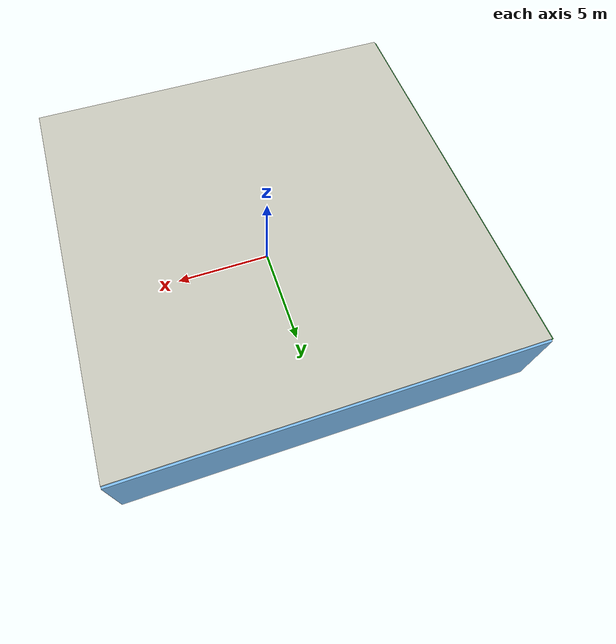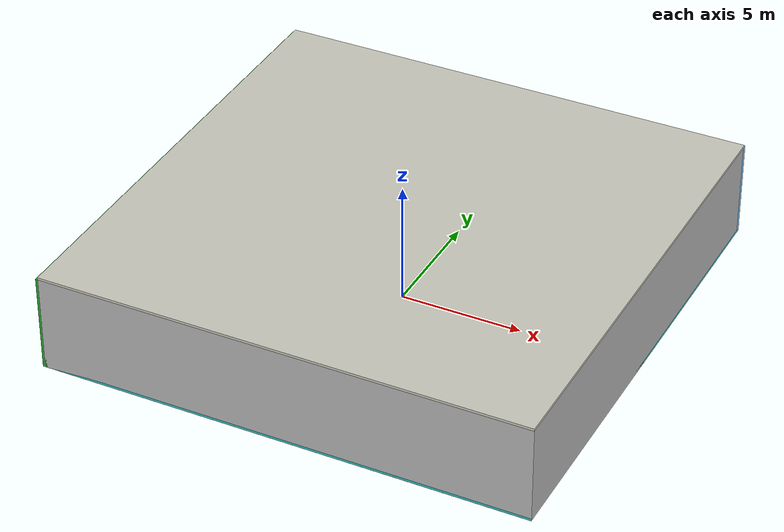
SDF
<sdf version="1.4">
 <world name="default">
  <physics type="ode">
   <max_step_size>0.001</max_step_size>
   <real_time_factor>1</real_time_factor>
   <real_time_update_rate>1000</real_time_update_rate>
   <gravity>0 0 -9.8</gravity>
  </physics>
  <scene><ambient>0.4 0.4 0.4 1</ambient><background>0.7 0.7 0.7 1</background><shadows>1</shadows></scene>
  <model name="Surrounding">
   <static>1</static>
   <link name="Ceiling">
    <collision name="Ceiling_Collision"><geometry><box><size>20 20 0.1</size></box></geometry></collision>
    <visual name="Ceiling_Visual">
     <geometry><box><size>20 20 0.1</size></box></geometry>
     <material>
      <script><uri>file://media/materials/scripts/gazebo.material</uri><name>Gazebo/PaintedWall</name></script>
     </material>
    </visual>
    <pose>0 0 4.05 0 0 0</pose>
   </link>
   <link name="Wall_South">
    <collision name="Wall_South_Collision">
     <geometry><box><size>20 0 4</size></box></geometry>
     <pose>0 0 2 0 -0 0</pose>
    </collision>
    <visual name="Wall_South_Visual">
     <pose>0 0 2 0 -0 0</pose>
     <geometry><box><size>20 0 4</size></box></geometry>
     <material>
      <script><uri>file://media/materials/scripts/gazebo.material</uri><name>Gazebo/CloudySky</name></script>
     </material>
    </visual>
    <velocity_decay><linear>0</linear><angular>0</angular></velocity_decay>
    <pose>0 -10 0 0 -0 0</pose>
   </link>
   <link name="Wall_East">
    <collision name="Wall_21_Collision">
     <geometry><box><size>20 0 4</size></box></geometry>
     <pose>0 0 2 0 -0 0</pose>
    </collision>
    <visual name="Wall_21_Visual">
     <pose>0 0 2 0 -0 0</pose>
     <geometry><box><size>20 0 4</size></box></geometry>
     <material>
      <script><uri>file://media/materials/scripts/gazebo.material</uri><name>Gazebo/LightOff</name></script>
     </material>
    </visual>
    <velocity_decay><linear>0</linear><angular>0</angular></velocity_decay>
    <pose>10 0 0 0 -0 1.5708</pose>
   </link>
   <link name="Wall_North">
    <collision name="Wall_22_Collision">
     <geometry><box><size>20 0.2 4</size></box></geometry>
     <pose>0 0 2 0 -0 0</pose>
    </collision>
    <visual name="Wall_22_Visual">
     <pose>0 0 2 0 -0 0</pose>
     <geometry><box><size>20 0.2 4</size></box></geometry>
     <material>
      <script><uri>file://media/materials/scripts/gazebo.material</uri><name>Gazebo/SkyBlue</name></script>
     </material>
    </visual>
    <velocity_decay><linear>0</linear><angular>0</angular></velocity_decay>
    <pose>0 10 0 0 -0 0</pose>
   </link>
   <link name="Wall_West">
    <collision name="Wall_23_Collision">
     <geometry><box><size>20 0.2 4</size></box></geometry>
     <pose>0 0 2 0 -0 0</pose>
    </collision>
    <visual name="Wall_23_Visual">
     <pose>0 0 2 0 -0 0</pose>
     <geometry><box><size>20 0.2 4</size></box></geometry>
     <material>
      <script><uri>file://media/materials/scripts/gazebo.material</uri><name>Gazebo/Green</name></script>
     </material>
    </visual>
    <velocity_decay><linear>0</linear><angular>0</angular></velocity_decay>
    <pose>-10 0 0 0 0 -1.5708</pose>
   </link>
   <link name="Ground_link">
    <collision name="collision">
     <pose>0 0 .05 0 -0 0</pose>
     <geometry><box><size>20 20 0.1</size></box></geometry>
    </collision>
    <visual name="visual">
     <pose>0 0 .05 0 -0 0</pose>
     <geometry><box><size>20 20 0.1</size></box></geometry>
     <material>
      <script><uri>file://media/materials/scripts/gazebo.material</uri><name>Gazebo/Turquoise</name></script>
     </material>
    </visual>
   </link>
   <static>1</static>
  </model>
  <spherical_coordinates>
   <surface_model>EARTH_WGS84</surface_model>
   <latitude_deg>0</latitude_deg>
   <longitude_deg>0</longitude_deg>
   <elevation>0</elevation>
   <heading_deg>0</heading_deg>
  </spherical_coordinates>
  <light name="lightball_0" type="diffuse">
   <diffuse>0.8 0.8 0.8 1</diffuse>
   <specular>0.2 0.2 0.2 1</specular>
   <attenuation>
    <range>100</range>
    <constant>0.7</constant>
    <linear>0.01</linear>
    <quadratic>0.001</quadratic>
   </attenuation>
   <direction>-0.5 0.1 -0.9</direction>
   <pose>-8.83407079036 -7.58582655302 1.1931690919 0 0 0</pose>
  </light>
  <light name="lightball_1" type="diffuse">
   <diffuse>0.8 0.8 0.8 1</diffuse>
   <specular>0.2 0.2 0.2 1</specular>
   <attenuation>
    <range>100</range>
    <constant>0.7</constant>
    <linear>0.01</linear>
    <quadratic>0.001</quadratic>
   </attenuation>
   <direction>-0.5 0.1 -0.9</direction>
   <pose>9.05900714564 4.03106615002 1.46302141092 0 0 0</pose>
  </light>
  <light name="lightball_2" type="diffuse">
   <diffuse>0.8 0.8 0.8 1</diffuse>
   <specular>0.2 0.2 0.2 1</specular>
   <attenuation>
    <range>100</range>
    <constant>0.7</constant>
    <linear>0.01</linear>
    <quadratic>0.001</quadratic>
   </attenuation>
   <direction>-0.5 0.1 -0.9</direction>
   <pose>8.02565508388 8.8834182991 2.79652035931 0 0 0</pose>
  </light>
  <light name="lightball_3" type="diffuse">
   <diffuse>0.8 0.8 0.8 1</diffuse>
   <specular>0.2 0.2 0.2 1</specular>
   <attenuation>
    <range>100</range>
    <constant>0.7</constant>
    <linear>0.01</linear>
    <quadratic>0.001</quadratic>
   </attenuation>
   <direction>-0.5 0.1 -0.9</direction>
   <pose>0.363282563325 -3.67245171329 2.86369148444 0 0 0</pose>
  </light>
  <light name="lightball_4" type="diffuse">
   <diffuse>0.8 0.8 0.8 1</diffuse>
   <specular>0.2 0.2 0.2 1</specular>
   <attenuation>
    <range>100</range>
    <constant>0.7</constant>
    <linear>0.01</linear>
    <quadratic>0.001</quadratic>
   </attenuation>
   <direction>-0.5 0.1 -0.9</direction>
   <pose>0.838724330853 2.46325874211 1.12248610142 0 0 0</pose>
  </light>
  <light name="lightball_5" type="diffuse">
   <diffuse>0.8 0.8 0.8 1</diffuse>
   <specular>0.2 0.2 0.2 1</specular>
   <attenuation>
    <range>100</range>
    <constant>0.7</constant>
    <linear>0.01</linear>
    <quadratic>0.001</quadratic>
   </attenuation>
   <direction>-0.5 0.1 -0.9</direction>
   <pose>6.30561857859 8.36365268929 0.962724698875 0 0 0</pose>
  </light>
  <light name="lightball_6" type="diffuse">
   <diffuse>0.8 0.8 0.8 1</diffuse>
   <specular>0.2 0.2 0.2 1</specular>
   <attenuation>
    <range>100</range>
    <constant>0.7</constant>
    <linear>0.01</linear>
    <quadratic>0.001</quadratic>
   </attenuation>
   <direction>-0.5 0.1 -0.9</direction>
   <pose>-4.1140616073 -9.59539265437 1.69113542024 0 0 0</pose>
  </light>
  <light name="lightball_7" type="diffuse">
   <diffuse>0.8 0.8 0.8 1</diffuse>
   <specular>0.2 0.2 0.2 1</specular>
   <attenuation>
    <range>100</range>
    <constant>0.7</constant>
    <linear>0.01</linear>
    <quadratic>0.001</quadratic>
   </attenuation>
   <direction>-0.5 0.1 -0.9</direction>
   <pose>-6.23433046503 -4.37181608246 3.57089402159 0 0 0</pose>
  </light>
  <light name="lightball_8" type="diffuse">
   <diffuse>0.8 0.8 0.8 1</diffuse>
   <specular>0.2 0.2 0.2 1</specular>
   <attenuation>
    <range>100</range>
    <constant>0.7</constant>
    <linear>0.01</linear>
    <quadratic>0.001</quadratic>
   </attenuation>
   <direction>-0.5 0.1 -0.9</direction>
   <pose>-1.90210395619 -8.18953428421 0.785544974024 0 0 0</pose>
  </light>
  <light name="lightball_9" type="diffuse">
   <diffuse>0.8 0.8 0.8 1</diffuse>
   <specular>0.2 0.2 0.2 1</specular>
   <attenuation>
    <range>100</range>
    <constant>0.7</constant>
    <linear>0.01</linear>
    <quadratic>0.001</quadratic>
   </attenuation>
   <direction>-0.5 0.1 -0.9</direction>
   <pose>4.42045609986 0.0656074257407 2.90807180786 0 0 0</pose>
  </light>
  <light name="lightball_10" type="diffuse">
   <diffuse>0.8 0.8 0.8 1</diffuse>
   <specular>0.2 0.2 0.2 1</specular>
   <attenuation>
    <range>100</range>
    <constant>0.7</constant>
    <linear>0.01</linear>
    <quadratic>0.001</quadratic>
   </attenuation>
   <direction>-0.5 0.1 -0.9</direction>
   <pose>-2.86415012912 9.76196743081 3.68281124815 0 0 0</pose>
  </light>
  <include>
   <uri>model://robocup_3Dsim_goal</uri>
   <pose>1.53585953222 -4.41142630233 0 0 0 2.35031628848</pose>
  </include>
  <include>
   <uri>model://construction_cone</uri>
   <pose>0.364223343093 5.49523001355 0 0 0 1.73504790831</pose>
  </include>
  <include>
   <uri>model://robocup_3Dsim_goal</uri>
   <pose>5.64875786998 -8.04831169584 0 0 0 1.13569567239</pose>
  </include>
  <include><uri>model://cabinet</uri><pose>3.96422023382 -4.73975105931 0 0 0 1.34485042031</pose></include>
  <include><uri>model://cabinet</uri><pose>5.61427132106 4.07224522617 0 0 0 0.939668109224</pose></include>
  <include><uri>model://table</uri><pose>6.80223957771 -7.56390235079 0 0 0 1.27107158204</pose></include>
  <include><uri>model://cabinet</uri><pose>6.48123720259 7.38492852567 0 0 0 2.22308989719</pose></include>
 </world>
</sdf>

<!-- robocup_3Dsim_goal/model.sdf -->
<sdf version="1.5">
  <model name="robocup_3d_goal">
    <static>true</static>
    <link name="left_post">
      <pose>0 1.05 0.45 0 0 0</pose>
      <collision name="collision">
        <geometry>
          <cylinder>
            <radius>0.05</radius>
            <length>0.9</length>
          </cylinder>
        </geometry>
      </collision>
      <visual name="visual">
        <geometry>
          <cylinder>
            <radius>0.05</radius>
            <length>0.9</length>
          </cylinder>
        </geometry>
        <material>
          <script>
            <uri>file://media/materials/scripts/gazebo.material</uri>
            <name>Gazebo/ZincYellow</name>
          </script>
        </material>
      </visual>
    </link>
    <link name="left_support_horiz_lower">
      <pose>0.30 1.05 0.01 0 0 0</pose>
      <collision name="collision">
        <geometry>
          <box>
            <size>0.50 0.02 0.02</size>
          </box>
        </geometry>
      </collision>
      <visual name="visual">
        <geometry>
          <box>
            <size>0.50 0.02 0.02</size>
          </box>
        </geometry>
        <material>
          <script>
            <uri>file://media/materials/scripts/gazebo.material</uri>
            <name>Gazebo/White</name>
          </script>
        </material>
      </visual>
    </link>
    <link name="left_support_horiz_upper">
      <pose>0.30 1.05 0.79 0 0 0</pose>
      <collision name="collision">
        <geometry>
          <box>
            <size>0.50 0.02 0.02</size>
          </box>
        </geometry>
      </collision>
      <visual name="visual">
        <geometry>
          <box>
            <size>0.50 0.02 0.02</size>
          </box>
        </geometry>
        <material>
          <script>
            <uri>file://media/materials/scripts/gazebo.material</uri>
            <name>Gazebo/White</name>
          </script>
        </material>
      </visual>
    </link>
    <link name="left_support_vertical">
      <pose>0.56 1.05 0.4 0 1.5708 0</pose>
      <collision name="collision">
        <geometry>
          <box>
            <size>0.80 0.02 0.02</size>
          </box>
        </geometry>
      </collision>
      <visual name="visual">
        <geometry>
          <box>
            <size>0.80 0.02 0.02</size>
          </box>
        </geometry>
        <material>
          <script>
            <uri>file://media/materials/scripts/gazebo.material</uri>
            <name>Gazebo/White</name>
          </script>
        </material>
      </visual>
    </link>
    <link name="right_support_horiz_lower">
      <pose>0.30 -1.05 0.01 0 0 0</pose>
      <collision name="collision">
        <geometry>
          <box>
            <size>0.50 0.02 0.02</size>
          </box>
        </geometry>
      </collision>
      <visual name="visual">
        <geometry>
          <box>
            <size>0.50 0.02 0.02</size>
          </box>
        </geometry>
        <material>
          <script>
            <uri>file://media/materials/scripts/gazebo.material</uri>
            <name>Gazebo/White</name>
          </script>
        </material>
      </visual>
    </link>
    <link name="right_support_horiz_upper">
      <pose>0.30 -1.05 0.79 0 0 0</pose>
      <collision name="collision">
        <geometry>
          <box>
            <size>0.50 0.02 0.02</size>
          </box>
        </geometry>
      </collision>
      <visual name="visual">
        <geometry>
          <box>
            <size>0.50 0.02 0.02</size>
          </box>
        </geometry>
        <material>
          <script>
            <uri>file://media/materials/scripts/gazebo.material</uri>
            <name>Gazebo/White</name>
          </script>
        </material>
      </visual>
    </link>
    <link name="right_support_vertical">
      <pose>0.56 -1.05 0.4 0 1.5708 0</pose>
      <collision name="collision">
        <geometry>
          <box>
            <size>0.80 0.02 0.02</size>
          </box>
        </geometry>
      </collision>
      <visual name="visual">
        <geometry>
          <box>
            <size>0.80 0.02 0.02</size>
          </box>
        </geometry>
        <material>
          <script>
            <uri>file://media/materials/scripts/gazebo.material</uri>
            <name>Gazebo/White</name>
          </script>
        </material>
      </visual>
    </link>
    <link name="center_support_horiz_lower">
      <pose>0.56 0 0.01 0 1.5708 0</pose>
      <collision name="collision">
        <geometry>
          <box>
            <size>0.02 2.08 0.02</size>
          </box>
        </geometry>
      </collision>
      <visual name="visual">
        <geometry>
          <box>
            <size>0.02 2.08 0.02</size>
          </box>
        </geometry>
        <material>
          <script>
            <uri>file://media/materials/scripts/gazebo.material</uri>
            <name>Gazebo/White</name>
          </script>
        </material>
      </visual>
    </link>
    <link name="center_support_horiz_upper">
      <pose>0.56 0 0.79 0 1.5708 0</pose>
      <collision name="collision">
        <geometry>
          <box>
            <size>0.02 2.08 0.02</size>
          </box>
        </geometry>
      </collision>
      <visual name="visual">
        <geometry>
          <box>
            <size>0.02 2.08 0.02</size>
          </box>
        </geometry>
        <material>
          <script>
            <uri>file://media/materials/scripts/gazebo.material</uri>
            <name>Gazebo/White</name>
          </script>
        </material>
      </visual>
    </link>
    <link name="right_post">
      <pose>0 -1.05 0.45 0 0 0</pose>
      <collision name="collision">
        <geometry>
          <cylinder>
            <radius>0.05</radius>
            <length>0.9</length>
          </cylinder>
        </geometry>
      </collision>
      <visual name="visual">
        <geometry>
          <cylinder>
            <radius>0.05</radius>
            <length>0.9</length>
          </cylinder>
        </geometry>
        <material>
          <script>
            <uri>file://media/materials/scripts/gazebo.material</uri>
            <name>Gazebo/ZincYellow</name>
          </script>
        </material>
      </visual>
    </link>
    <link name="crossbar">
      <pose>0 0 0.85 1.57 1.57 0</pose>
      <collision name="collision">
        <geometry>
          <cylinder>
            <radius>0.05</radius>
            <length>2.0</length>
          </cylinder>
        </geometry>
      </collision>
      <visual name="visual">
        <geometry>
          <cylinder>
            <radius>0.05</radius>
            <length>2.0</length>
          </cylinder>
        </geometry>
        <material>
          <script>
            <uri>file://media/materials/scripts/gazebo.material</uri>
            <name>Gazebo/ZincYellow</name>
          </script>
        </material>
      </visual>
    </link>
    <link name="center_net">
      <pose>0.56 0 0.40 0 0 0</pose>
      <collision name="collision">
        <geometry>
          <box>
            <size>0.01 2.1 0.80</size>
          </box>
        </geometry>
      </collision>
      <visual name="visual">
        <geometry>
          <box>
            <size>0.01 2.1 0.80</size>
          </box>
        </geometry>
        <material>
          <script>
            <uri>model://../model_source/models/robocup09_spl_field/materials/scripts/</uri>
            <uri>model://../model_source/models/robocup09_spl_field/materials/textures/</uri>
            <name>RoboCup/Net</name>
          </script>
        </material>
      </visual>
    </link>
    <link name="left_net">
      <pose>0.30 1.05 0.40 0 0 0</pose>
      <collision name="collision">
        <geometry>
          <box>
            <size>0.50 0.01 0.76</size>
          </box>
        </geometry>
      </collision>
      <visual name="visual">
        <geometry>
          <box>
            <size>0.50 0.01 0.76</size>
          </box>
        </geometry>
        <material>
          <script>
            <uri>model://../model_source/models/robocup09_spl_field/materials/scripts/</uri>
            <uri>model://../model_source/models/robocup09_spl_field/materials/textures/</uri>
            <name>RoboCup/Net</name>
          </script>
        </material>
      </visual>
    </link>
    <link name="right_net">
      <pose>0.30 -1.05 0.40 0 0 0</pose>
      <collision name="collision">
        <geometry>
          <box>
            <size>0.50 0.01 0.76</size>
          </box>
        </geometry>
      </collision>
      <visual name="visual">
        <geometry>
          <box>
            <size>0.50 0.01 0.76</size>
          </box>
        </geometry>
        <material>
          <script>
            <uri>model://../model_source/models/robocup09_spl_field/materials/scripts/</uri>
            <uri>model://../model_source/models/robocup09_spl_field/materials/textures/</uri>
            <name>RoboCup/Net</name>
          </script>
        </material>
      </visual>
    </link>
  </model>
</sdf>

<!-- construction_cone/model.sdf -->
<sdf version="1.5">
  <model name="Construction Cone">
    <link name="link">
      <collision name="collision">
        <geometry>
          <mesh>
            <scale>10 10 10</scale>
            <uri>file://isr-testbed/construction_cone/meshes/construction_cone.dae</uri>
          </mesh>
        </geometry>
      </collision>
      <visual name="visual">
        <geometry>
          <mesh>
            <scale>10 10 10</scale>
            <uri>file://isr-testbed/construction_cone/meshes/construction_cone.dae</uri>
          </mesh>
        </geometry>
      </visual>
    </link>
  </model>
</sdf>

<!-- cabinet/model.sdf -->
<sdf version="1.5">
  <model name="cabinet">
    <static>true</static>
    <link name="cabinet_bottom_plate">
      <inertial>
        <pose>0 0 -1 0 0 0</pose>
        <inertia>
          <ixx>2.050000</ixx>
          <ixy>0</ixy>
          <ixz>0</ixz>
          <iyy>2.050000</iyy>
          <iyz>0</iyz>
          <izz>2.050000</izz>
        </inertia>
        <mass>25.000000</mass>
      </inertial>
      <collision name="cabinet_bottom_plate_geom">
        <pose>0 0 0.010000 0 0 0</pose>
        <geometry>
          <box>
            <size>0.450000 0.450000 0.020000</size>
          </box>
        </geometry>
      </collision>
      <visual name="cabinet_bottom_plate_geom_visual">
        <pose>0 0 0.010000 0 0 0</pose>
        <geometry>
          <box>
            <size>0.450000 0.450000 0.020000</size>
          </box>
        </geometry>
        <material>
          <script>
            <uri>model://media/materials/scripts/gazebo.material</uri>
            <name>Gazebo/Wood</name>
          </script>
        </material>
      </visual>
      <collision name="cabinet_bottom_plate_geom_cabinet_back_plate">
        <pose>0.235000 0 0.510000 0 0 0</pose>
        <geometry>
          <box>
            <size>0.020000 0.450000 1.020000</size>
          </box>
        </geometry>
      </collision>
      <visual name="cabinet_bottom_plate_geom_cabinet_back_plate_visual">
        <pose>0.235000 0 0.510000 0 0 0</pose>
        <geometry>
          <box>
            <size>0.020000 0.450000 1.020000</size>
          </box>
        </geometry>
        <material>
          <script>
            <uri>model://media/materials/scripts/gazebo.material</uri>
            <name>Gazebo/Wood</name>
          </script>
        </material>
      </visual>
      <collision name="cabinet_bottom_plate_geom_cabinet_left_plate">
        <pose>0 0.235000 0.510000 0 0 0</pose>
        <geometry>
          <box>
            <size>0.450000 0.020000 1.020000</size>
          </box>
        </geometry>
      </collision>
      <visual name="cabinet_bottom_plate_geom_cabinet_left_plate_visual">
        <pose>0 0.235000 0.510000 0 0 0</pose>
        <geometry>
          <box>
            <size>0.450000 0.020000 1.020000</size>
          </box>
        </geometry>
        <material>
          <script>
            <uri>model://media/materials/scripts/gazebo.material</uri>
            <name>Gazebo/Wood</name>
          </script>
        </material>
      </visual>
      <collision name="cabinet_bottom_plate_geom_cabinet_middle_plate">
        <pose>0 0 0.510000 0 0 0</pose>
        <geometry>
          <box>
            <size>0.450000 0.450000 0.020000</size>
          </box>
        </geometry>
      </collision>
      <visual name="cabinet_bottom_plate_geom_cabinet_middle_plate_visual">
        <pose>0 0 0.510000 0 0 0</pose>
        <geometry>
          <box>
            <size>0.450000 0.450000 0.020000</size>
          </box>
        </geometry>
        <material>
          <script>
            <uri>model://media/materials/scripts/gazebo.material</uri>
            <name>Gazebo/Wood</name>
          </script>
        </material>
      </visual>
      <collision name="cabinet_bottom_plate_geom_cabinet_right_plate">
        <pose>0 -0.235000 0.510000 0 0 0</pose>
        <geometry>
          <box>
            <size>0.450000 0.020000 1.020000</size>
          </box>
        </geometry>
      </collision>
      <visual name="cabinet_bottom_plate_geom_cabinet_right_plate_visual">
        <pose>0 -0.235000 0.510000 0 0 0</pose>
        <geometry>
          <box>
            <size>0.450000 0.020000 1.020000</size>
          </box>
        </geometry>
        <material>
          <script>
            <uri>model://media/materials/scripts/gazebo.material</uri>
            <name>Gazebo/Wood</name>
          </script>
        </material>
      </visual>
      <collision name="cabinet_bottom_plate_geom_cabinet_top_plate">
        <pose>0 0 1.010000 0 0 0</pose>
        <geometry>
          <box>
            <size>0.450000 0.450000 0.020000</size>
          </box>
        </geometry>
      </collision>
      <visual name="cabinet_bottom_plate_geom_cabinet_top_plate_visual">
        <pose>0 0 1.010000 0 0 0</pose>
        <geometry>
          <box>
            <size>0.450000 0.450000 0.020000</size>
          </box>
        </geometry>
        <material>
          <script>
            <uri>model://media/materials/scripts/gazebo.material</uri>
            <name>Gazebo/Wood</name>
          </script>
        </material>
      </visual>
    </link>
  </model>
</sdf>

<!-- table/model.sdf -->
<sdf version="1.5">
  <model name="table">
    <static>true</static>
    <link name="link">
      <collision name="surface">
        <pose>0 0 1.0 0 0 0</pose>
        <geometry>
          <box>
            <size>1.5 0.8 0.03</size>
          </box>
        </geometry>
        <surface>
          <friction>
            <ode>
              <mu>0.6</mu>
              <mu2>0.6</mu2>
            </ode>
          </friction>
        </surface>
      </collision>
      <visual name="visual1">
        <pose>0 0 1.0 0 0 0</pose>
        <geometry>
          <box>
            <size>1.5 0.8 0.03</size>
          </box>
        </geometry>
        <material>
          <script>
            <uri>model://media/materials/scripts/gazebo.material</uri>
            <name>Gazebo/Wood</name>
          </script>
        </material>
      </visual>
      <collision name="front_left_leg">
        <pose>0.68 0.38 0.5 0 0 0</pose>
        <geometry>
          <cylinder>
            <radius>0.02</radius>
            <length>1.0</length>
          </cylinder>
        </geometry>
      </collision>
      <visual name="front_left_leg">
        <pose>0.68 0.38 0.5 0 0 0</pose>
        <geometry>
          <cylinder>
            <radius>0.02</radius>
            <length>1.0</length>
          </cylinder>
        </geometry>
        <material>
          <script>
            <uri>model://media/materials/scripts/gazebo.material</uri>
            <name>Gazebo/Grey</name>
          </script>
        </material>
      </visual>
      <collision name="front_right_leg">
        <pose>0.68 -0.38 0.5 0 0 0</pose>
        <geometry>
          <cylinder>
            <radius>0.02</radius>
            <length>1.0</length>
          </cylinder>
        </geometry>
      </collision>
      <visual name="front_right_leg">
        <pose>0.68 -0.38 0.5 0 0 0</pose>
        <geometry>
          <cylinder>
            <radius>0.02</radius>
            <length>1.0</length>
          </cylinder>
        </geometry>
        <material>
          <script>
            <uri>model://media/materials/scripts/gazebo.material</uri>
            <name>Gazebo/Grey</name>
          </script>
        </material>
      </visual>
      <collision name="back_right_leg">
        <pose>-0.68 -0.38 0.5 0 0 0</pose>
        <geometry>
          <cylinder>
            <radius>0.02</radius>
            <length>1.0</length>
          </cylinder>
        </geometry>
      </collision>
      <visual name="back_right_leg">
        <pose>-0.68 -0.38 0.5 0 0 0</pose>
        <geometry>
          <cylinder>
            <radius>0.02</radius>
            <length>1.0</length>
          </cylinder>
        </geometry>
        <material>
          <script>
            <uri>model://media/materials/scripts/gazebo.material</uri>
            <name>Gazebo/Grey</name>
          </script>
        </material>
      </visual>
      <collision name="back_left_leg">
        <pose>-0.68 0.38 0.5 0 0 0</pose>
        <geometry>
          <cylinder>
            <radius>0.02</radius>
            <length>1.0</length>
          </cylinder>
        </geometry>
      </collision>
      <visual name="back_left_leg">
        <pose>-0.68 0.38 0.5 0 0 0</pose>
        <geometry>
          <cylinder>
            <radius>0.02</radius>
            <length>1.0</length>
          </cylinder>
        </geometry>
        <material>
          <script>
            <uri>model://media/materials/scripts/gazebo.material</uri>
            <name>Gazebo/Grey</name>
          </script>
        </material>
      </visual>
    </link>
  </model>
</sdf>
